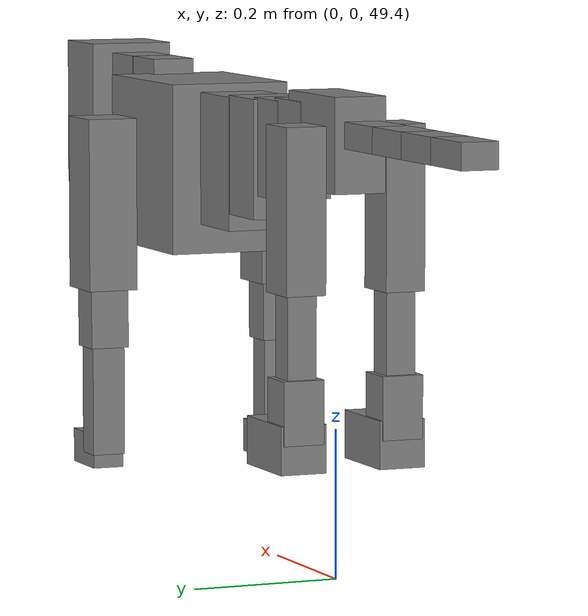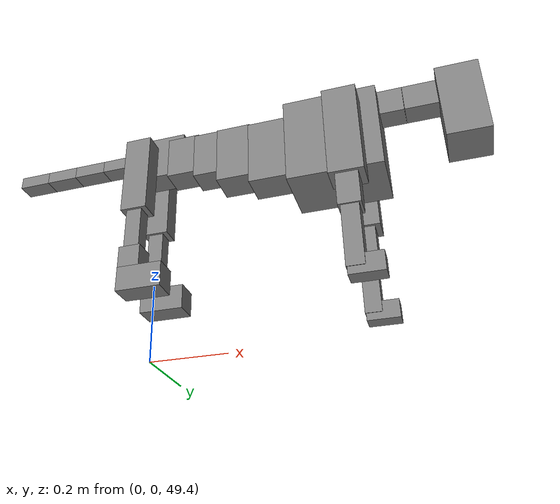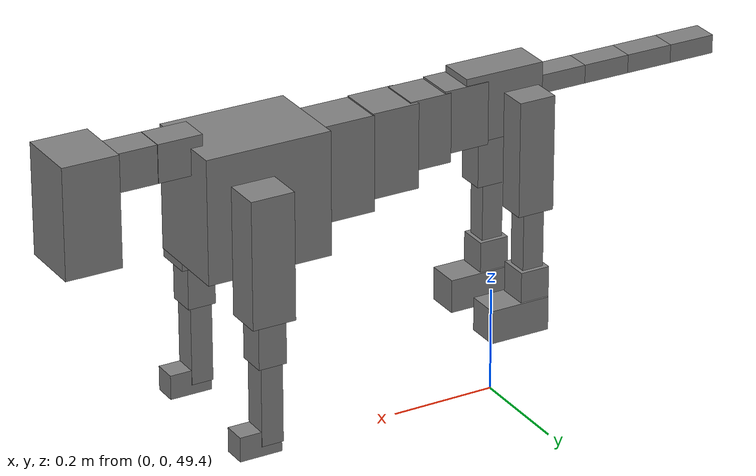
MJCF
<mujoco model="dog">

    <default>
        <joint armature="0.02" stiffness="1" damping="0.2" limited="true"/>
        <geom condim="3" friction="1 0.05 0.05" margin="0.01"/>
        <motor ctrllimited="true" ctrlrange="-1.0 1.0" forcelimited="true" gear="50"/>
    </default>

    <compiler inertiafromgeom="true" angle="radian"/>

    <option timestep="0.016" iterations="50" tolerance="1e-10" solver="Newton" jacobian="dense" cone="pyramidal"/>

    <size nconmax="20000" njmax="60000" nstack="5000000"/>
    <visual>
        <map force="0.1" zfar="30"/>
        <rgba haze="0.15 0.25 0.35 1"/>
        <quality shadowsize="2048"/>
        <global offwidth="800" offheight="800"/>
    </visual>

    <asset>
        <texture type="skybox" builtin="gradient" rgb1="0.3 0.5 0.7" rgb2="0 0 0" width="512" height="512"/>
        <texture name="texplane" type="2d" builtin="checker" rgb1=".2 .3 .4" rgb2=".1 0.15 0.2" width="512" height="512"
                 mark="cross" markrgb=".8 .8 .8"/>
        <texture name="texgeom" type="cube" builtin="flat" mark="cross" width="127" height="1278" rgb1="0.8 0.6 0.4"
                 rgb2="0.8 0.6 0.4" markrgb="1 1 1" random="0.01"/>

        <material name="matplane" reflectance="0.3" texture="texplane" texrepeat="1 1" texuniform="true"/>
        <material name="matgeom" texture="texgeom" texuniform="true" rgba="0.8 0.6 .4 1"/>
    </asset>

    <worldbody>
        <geom name="floor" pos="0 0 0" size="0 0 .25" type="plane" material="matplane" condim="3"/>

        <light directional="false" diffuse=".2 .2 .2" specular="0 0 0" pos="0 0 5" dir="0 0 -1" castshadow="false"/>
        <light mode="targetbodycom" target="torso" directional="false" diffuse=".8 .8 .8" specular="0.3 0.3 0.3"
               pos="0 0 4.0" dir="0 0 -1"/>

        <body name="root" pos="0 0 50">
            <freejoint name="root_1"/>
            <geom type="box" pos="0 0 -0.02" size="0.0774  0.0358  0.063" density="2030"/>

            <body name="spine1" pos="0.054 0 0">
                <joint name="spine1_y" axis="0 1 0" range="0 0.7" limited="true"/>
                <geom type="box" pos="0.02375 0 -0.03" size="0.04375  0.0375  0.05985" density="2030"/>

                <body name="spine2" pos="0.0612 0 0">
                    <joint name="spine2_y" axis="0 1 0" range="-0.15 0.15" limited="true"/>
                    <geom type="box" pos="0.03555  0  -0.04" size="0.04055  0.039  0.06615" density="2030"/>

                    <body name="spine3" pos="0.0730 0 0">
                        <joint name="spine3_y" axis="0 1 0" range="-0.15 0.15" limited="true"/>
                        <geom type="box" pos="0.03555  0  -0.057" size="0.04555  0.0445  0.081" density="2030"/>

                        <body name="spine4" pos="0.0780 0 0">
                            <joint name="spine4_y" axis="0 1 0" range="-0.15 0.15" limited="true"/>
                            <geom type="box" pos="0.05265  0  -0.07" size="0.05265  0.045  0.09135" density="2030"/>

                            <body name="torso" pos="0.1082 0 0">
                                <joint name="torso_y" axis="0 1 0" range="-0.15 0.15" limited="true"/>
                                <geom type="box" pos="0.11925  0  -0.085" size="0.11925  0.085  0.11745"
                                      density="2030"/>

                                <body name="neck1" pos="0.2160  0   0.0180">
                                    <joint name="neck1_y" axis="0 1 0" range="-1.2  -1" limited="true"/>
                                    <geom type="box" pos="0.0423  0  0" size="0.0423  0.03  0.036" density="2325"/>

                                    <body name="neck2" pos="0.0853  0  0">
                                        <joint name="neck2_y" axis="0 1 0" range="0.1  0" limited="true"/>
                                        <geom type="box" pos="0.0423  0  0" size="0.0423  0.03  0.036" density="2325"/>

                                        <body name="head" pos="0.0853  0  0">
                                            <joint name="head_y" axis="0 1 0" range="-0.3  -0.2" limited="true"/>
                                            <geom type="box" pos="0.0531  0  -0.055" size="0.0531  0.06  0.1044"
                                                  density="4030"/>

                                        </body>
                                    </body>
                                </body>

                                <body name="front_shoulder" pos="0.156  0   -0.0480">
                                    <joint name="front_shoulder_y" axis="0 1 0" range="-1 1.5" limited="true"/>
                                    <geom type="box" pos="0 0.13 -0.0940" size="0.0413  0.0353  0.1206" density="1158"/>
                                    <geom type="box" pos="0 -0.13 -0.0940" size="0.0413  0.0353  0.1206"
                                          density="1158"/>

                                    <body name="front_elbow" pos="0  0  -0.1880">
                                        <joint name="front_elbow_y" axis="0 1 0" range="-2 0" limited="true"/>
                                        <geom type="box" pos="0 0.13 -0.0545" size="0.0268  0.0274  0.0545"
                                              density="1081"/>
                                        <geom type="box" pos="0 -0.13 -0.0545" size="0.0268  0.0274  0.0545"
                                              density="1081"/>

                                        <body name="front_wrist" pos="0  0  -0.1090">
                                            <joint name="front_wrist_y" axis="0 1 0" range="-0.2 0" limited="true"/>
                                            <geom type="box" pos="0 0.13 -0.0693" size="0.0210  0.0234  0.0824"
                                                  density="1664"/>
                                            <geom type="box" pos="0 -0.13 -0.0693" size="0.0210  0.0234  0.0824"
                                                  density="1664"/>

                                            <body name="front_finger_end" pos="0  0  -0.1386">
                                                <joint name="front_finger_y" axis="0 1 0" range="-0.4 1"
                                                       limited="true"/>
                                                <geom type="box" pos="0.0221  0.13  -0.0085"
                                                      size="0.0406  0.0221  0.0235" density="1515"/>
                                                <geom type="box" pos="0.0221  -0.13  -0.0085"
                                                      size="0.0406  0.0221  0.0235" density="1515"/>

                                            </body>

                                        </body>
                                    </body>
                                </body>

                            </body>
                        </body>
                    </body>
                </body>
            </body>

            <body name="back_hip" pos="-0.03 0 -0.018">
                <joint name="back_hip_y" axis="0 1 0" range="-1.5 0.3" limited="true"/>
                <geom type="box" pos="0 0.07 -0.0869" size="0.0351  0.0275  0.1097" density="1154"/>
                <geom type="box" pos="0 -0.07 -0.0869" size="0.0351  0.0275  0.1097" density="1154"/>

                <body name="back_knee" pos="0  0  -0.1738">
                    <joint name="back_knee_y" axis="0 1 0" range="0 2.8" limited="true"/>
                    <geom type="box" pos="0 0.07 -0.0724" size="0.0206  0.0203  0.0879" density="1227"/>
                    <geom type="box" pos="0 -0.07 -0.0724" size="0.0206  0.0203  0.0879" density="1227"/>

                    <body name="back_ankle" pos="0  0  -0.1447">
                        <joint name="back_ankle_y" axis="0 1 0" range="-2.2 0" limited="true"/>
                        <geom type="box" pos="0 0.07 -0.0312" size="0.0284  0.0284  0.0424" density="1284"/>
                        <geom type="box" pos="0 -0.07 -0.0312" size="0.0284  0.0284  0.0424" density="1284"/>

                        <body name="back_toe_end" pos="0  0  -0.0623">
                            <joint name="back_toe_y" axis="0 1 0" range="-0.4 1" limited="true"/>
                            <geom type="box" pos="0.0318  0.07  -0.0172" size="0.0584  0.0318  0.0322" density="1515"/>
                            <geom type="box" pos="0.0318  -0.07  -0.0172" size="0.0584  0.0318  0.0322" density="1515"/>

                        </body>
                    </body>
                </body>
            </body>

            <body name="tail1" pos="-0.074 0 -0.006">
                <joint name="tail1_y" axis="0 1 0" range="-0.2 0.2" limited="true"/>
                <geom type="box" pos="-0.0536  0  0" size="0.045  0.025  0.0175" density="1587"/>

                <body name="tail2" pos="-0.09 0 0">
                    <joint name="tail2_y" axis="0 1 0" range="-0.2 0.2" limited="true"/>
                    <geom type="box" pos="-0.0536  0  0" size="0.045  0.025  0.0175" density="1587"/>

                    <body name="tail3" pos="-0.09 0 0">
                        <joint name="tail3_y" axis="0 1 0" range="-0.2 0.2" limited="true"/>
                        <geom type="box" pos="-0.0536  0  0" size="0.045  0.025  0.0175" density="1587"/>

                        <body name="tail4" pos="-0.09 0 0">
                            <joint name="tail4_y" axis="0 1 0" range="-0.2 0.2" limited="true"/>
                            <geom type="box" pos="-0.0536  0  0" size="0.045  0.025  0.0175" density="1587"/>

                        </body>
                    </body>
                </body>
            </body>
        </body>
    </worldbody>

    <actuator>
        <motor joint="spine1_y" forcerange="-150 150     "/>
        <motor joint="spine2_y" forcerange="-150 150     "/>
        <motor joint="spine3_y" forcerange="-150 150     "/>
        <motor joint="spine4_y" forcerange="-150 150     "/>
        <motor joint="torso_y" forcerange="-150 150     "/>
        <motor joint="neck1_y" forcerange="-100 100       "/>
        <motor joint="neck2_y" forcerange="-100 100       "/>
        <motor joint="head_y" forcerange="-150 150       "/>
        <motor joint="front_shoulder_y" forcerange="-145.85 189.47"/>
        <motor joint="front_elbow_y" forcerange="-193.39 105.97"/>
        <motor joint="front_wrist_y" forcerange="-135.27 51.83"/>
        <motor joint="front_finger_y" forcerange="-49.22 28.82"/>
        <motor joint="back_hip_y" forcerange="-201.54 365.12"/>
        <motor joint="back_knee_y" forcerange="-253.19 241.65"/>
        <motor joint="back_angle_y" forcerange="-180.72 173.09"/>
        <motor joint="back_toe_y" forcerange="-67.64 107.02"/>
        <motor joint="tail1_y" forcerange="-50 50     "/>
        <motor joint="tail2_y" forcerange="-50 50     "/>
        <motor joint="tail3_y" forcerange="-50 50     "/>
        <motor joint="tail4_y" forcerange="-50 50     "/>
    </actuator>
</mujoco>
